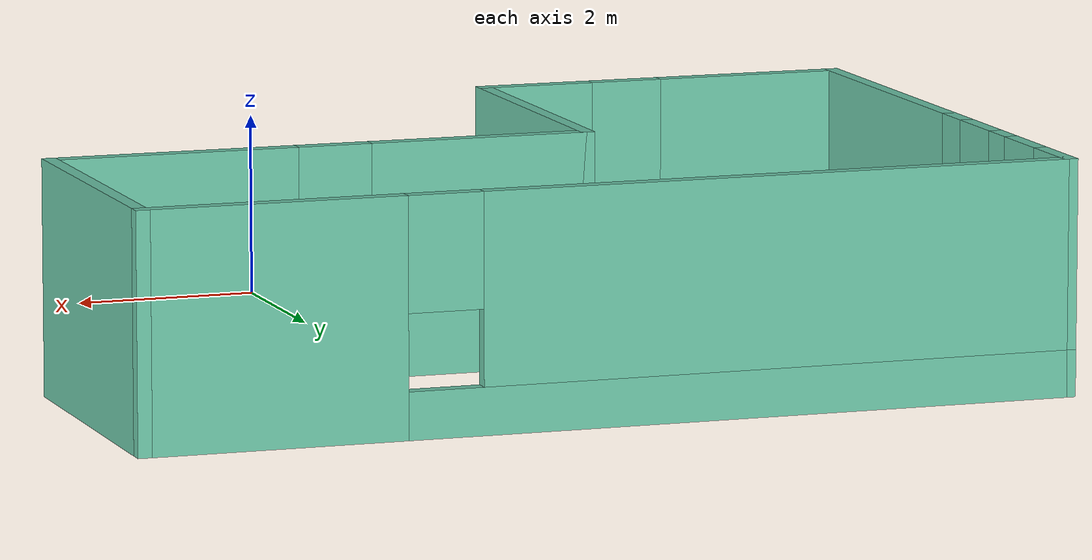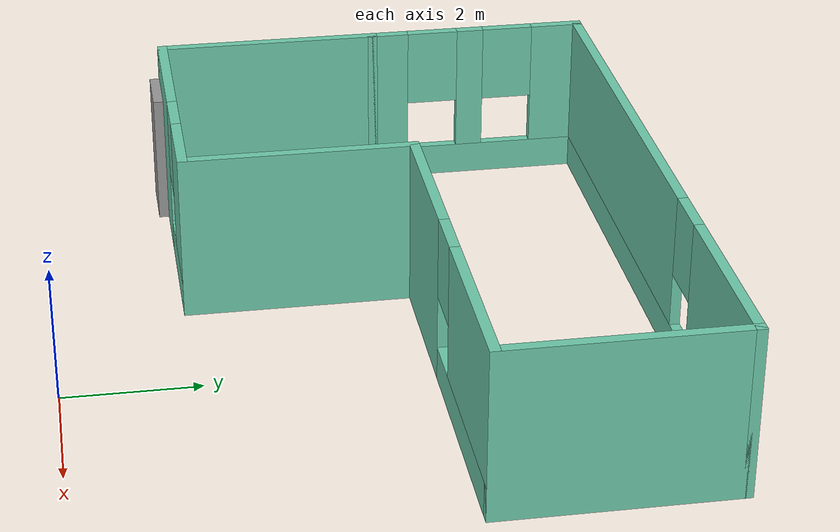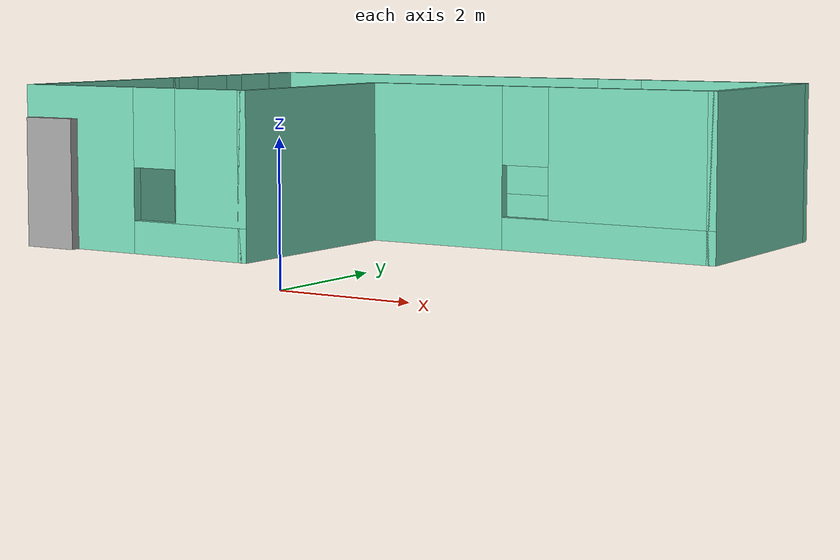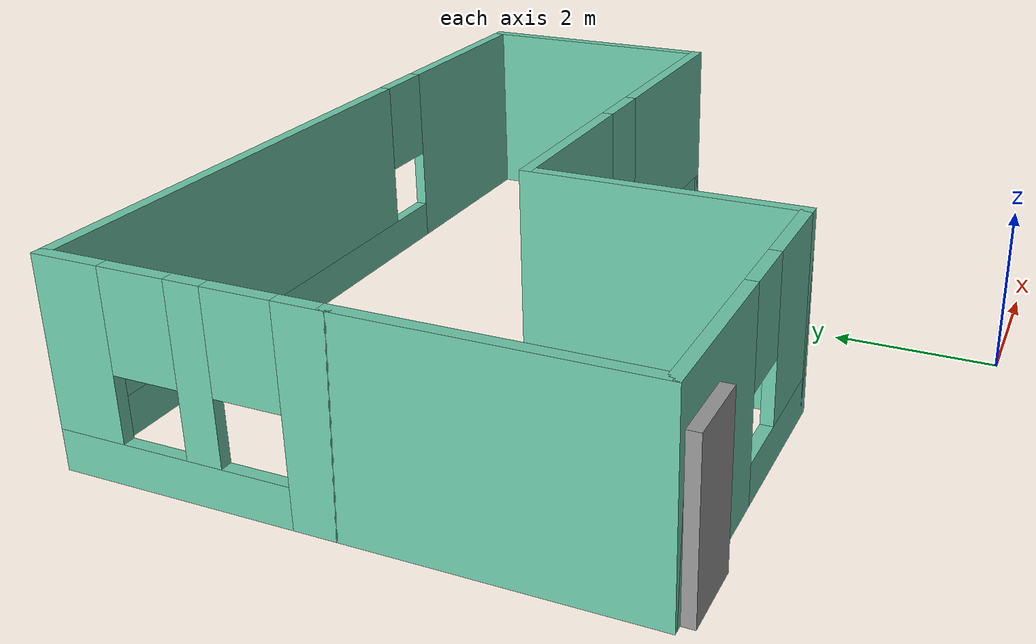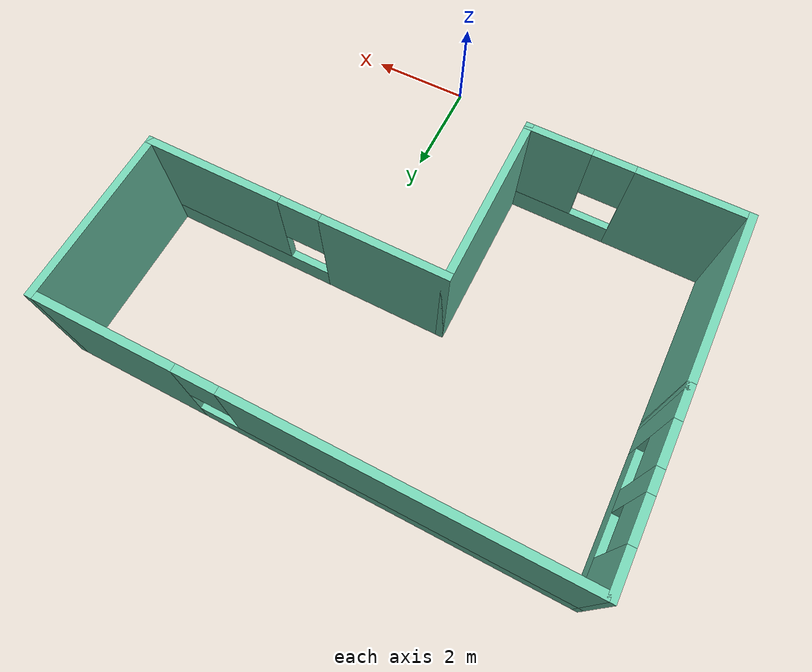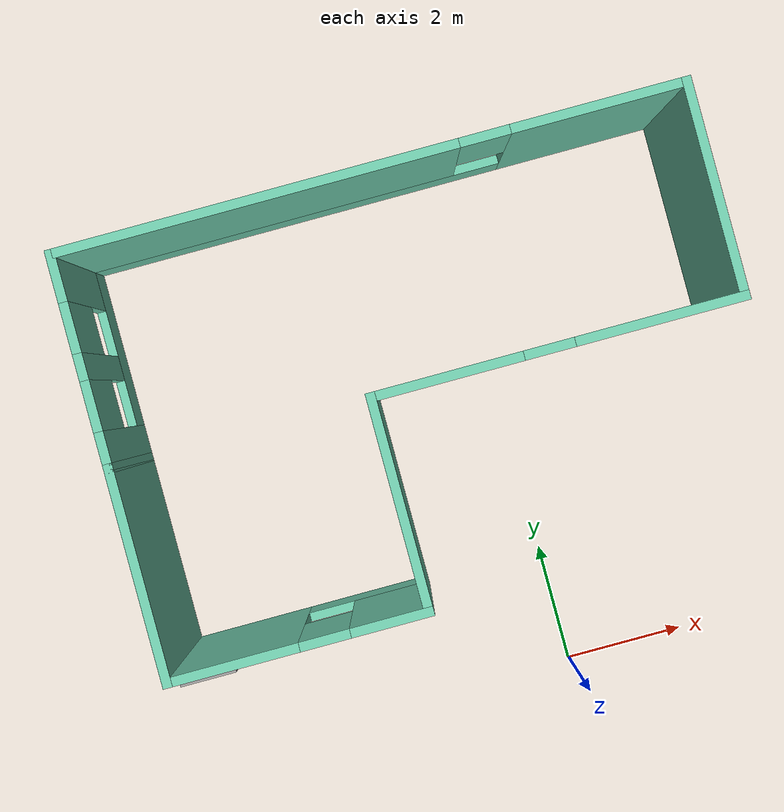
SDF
<?xml version='1.0'?>
<sdf version='1.6'>
  <model name='building'>
    <pose frame=''>-1.20844 5.30416 0 0 -0 0</pose>
    <link name='Door_0'>
      <collision name='Door_0_Collision'>
        <geometry>
          <box>
            <size>0.9 0.17 2</size>
          </box>
        </geometry>
        <pose frame=''>0 0 1 0 -0 0</pose>
      </collision>
      <visual name='Door_0_Visual'>
        <pose frame=''>0 0 1 0 -0 0</pose>
        <geometry>
          <box>
            <size>0.9 0.17 2</size>
          </box>
        </geometry>
        <material>
          <script>
            <uri>file://media/materials/scripts/gazebo.material</uri>
            <name>Gazebo/Grey</name>
          </script>
        </material>
      </visual>
      <pose frame=''>-4.47288 -3.49085 0 0 -0 0</pose>
    </link>
    <link name='Wall_1'>
      <collision name='Wall_1_Collision'>
        <geometry>
          <box>
            <size>3.5 0.15 2.5</size>
          </box>
        </geometry>
        <pose frame=''>0 0 1.25 0 -0 0</pose>
      </collision>
      <visual name='Wall_1_Visual'>
        <pose frame=''>0 0 1.25 0 -0 0</pose>
        <geometry>
          <box>
            <size>3.5 0.15 2.5</size>
          </box>
        </geometry>
        <material>
          <script>
            <uri>file://media/materials/scripts/gazebo.material</uri>
            <name>Gazebo/Grey</name>
          </script>
          <ambient>0.435294 0.796078 0.67451 1</ambient>
        </material>
        <meta>
          <layer>0</layer>
        </meta>
      </visual>
      <pose frame=''>-4.975 -1.675 0 0 0 -1.5708</pose>
    </link>
    <link name='Wall_2'>
      <pose frame=''>-2.925 -3.35 0 0 -0 0</pose>
      <visual name='Wall_2_Visual_0'>
        <pose frame=''>-1.05189 0 1.25 0 -0 0</pose>
        <geometry>
          <box>
            <size>2.14622 0.15 2.5</size>
          </box>
        </geometry>
        <material>
          <script>
            <uri>file://media/materials/scripts/gazebo.material</uri>
            <name>Gazebo/Grey</name>
          </script>
          <ambient>0.435294 0.796078 0.67451 1</ambient>
        </material>
        <meta>
          <layer>0</layer>
        </meta>
      </visual>
      <collision name='Wall_2_Collision_0'>
        <geometry>
          <box>
            <size>2.14622 0.15 2.5</size>
          </box>
        </geometry>
        <pose frame=''>-1.05189 0 1.25 0 -0 0</pose>
      </collision>
      <visual name='Wall_2_Visual_1'>
        <pose frame=''>1.07311 0 0.25 0 -0 0</pose>
        <geometry>
          <box>
            <size>2.10378 0.15 0.5</size>
          </box>
        </geometry>
        <material>
          <script>
            <uri>file://media/materials/scripts/gazebo.material</uri>
            <name>Gazebo/Grey</name>
          </script>
          <ambient>0.435294 0.796078 0.67451 1</ambient>
        </material>
        <meta>
          <layer>0</layer>
        </meta>
      </visual>
      <collision name='Wall_2_Collision_1'>
        <geometry>
          <box>
            <size>2.10378 0.15 0.5</size>
          </box>
        </geometry>
        <pose frame=''>1.07311 0 0.25 0 -0 0</pose>
      </collision>
      <visual name='Wall_2_Visual_2'>
        <pose frame=''>1.47311 0 1.5 0 -0 0</pose>
        <geometry>
          <box>
            <size>1.30378 0.15 2</size>
          </box>
        </geometry>
        <material>
          <script>
            <uri>file://media/materials/scripts/gazebo.material</uri>
            <name>Gazebo/Grey</name>
          </script>
          <ambient>0.435294 0.796078 0.67451 1</ambient>
        </material>
        <meta>
          <layer>0</layer>
        </meta>
      </visual>
      <collision name='Wall_2_Collision_2'>
        <geometry>
          <box>
            <size>1.30378 0.15 2</size>
          </box>
        </geometry>
        <pose frame=''>1.47311 0 1.5 0 -0 0</pose>
      </collision>
      <visual name='Wall_2_Visual_3'>
        <pose frame=''>0.421219 0 1.9 0 -0 0</pose>
        <geometry>
          <box>
            <size>0.8 0.15 1.2</size>
          </box>
        </geometry>
        <material>
          <script>
            <uri>file://media/materials/scripts/gazebo.material</uri>
            <name>Gazebo/Grey</name>
          </script>
          <ambient>0.435294 0.796078 0.67451 1</ambient>
        </material>
        <meta>
          <layer>0</layer>
        </meta>
      </visual>
      <collision name='Wall_2_Collision_3'>
        <geometry>
          <box>
            <size>0.8 0.15 1.2</size>
          </box>
        </geometry>
        <pose frame=''>0.421219 0 1.9 0 -0 0</pose>
      </collision>
    </link>
    <link name='Wall_3'>
      <collision name='Wall_3_Collision'>
        <geometry>
          <box>
            <size>3.5 0.15 2.5</size>
          </box>
        </geometry>
        <pose frame=''>0 0 1.25 0 -0 0</pose>
      </collision>
      <visual name='Wall_3_Visual'>
        <pose frame=''>0 0 1.25 0 -0 0</pose>
        <geometry>
          <box>
            <size>3.5 0.15 2.5</size>
          </box>
        </geometry>
        <material>
          <script>
            <uri>file://media/materials/scripts/gazebo.material</uri>
            <name>Gazebo/Grey</name>
          </script>
          <ambient>0.435294 0.796078 0.67451 1</ambient>
        </material>
        <meta>
          <layer>0</layer>
        </meta>
      </visual>
      <pose frame=''>-0.875 -1.675 0 0 -0 1.5708</pose>
    </link>
    <link name='Wall_4'>
      <pose frame=''>2.05 0 0 0 -0 0</pose>
      <visual name='Wall_4_Visual_0'>
        <pose frame=''>-1.7644 0 1.25 0 -0 0</pose>
        <geometry>
          <box>
            <size>2.4712 0.15 2.5</size>
          </box>
        </geometry>
        <material>
          <script>
            <uri>file://media/materials/scripts/gazebo.material</uri>
            <name>Gazebo/Grey</name>
          </script>
          <ambient>0.435294 0.796078 0.67451 1</ambient>
        </material>
        <meta>
          <layer>0</layer>
        </meta>
      </visual>
      <collision name='Wall_4_Collision_0'>
        <geometry>
          <box>
            <size>2.4712 0.15 2.5</size>
          </box>
        </geometry>
        <pose frame=''>-1.7644 0 1.25 0 -0 0</pose>
      </collision>
      <visual name='Wall_4_Visual_1'>
        <pose frame=''>1.2356 0 0.25 0 -0 0</pose>
        <geometry>
          <box>
            <size>3.5288 0.15 0.5</size>
          </box>
        </geometry>
        <material>
          <script>
            <uri>file://media/materials/scripts/gazebo.material</uri>
            <name>Gazebo/Grey</name>
          </script>
          <ambient>0.435294 0.796078 0.67451 1</ambient>
        </material>
        <meta>
          <layer>0</layer>
        </meta>
      </visual>
      <collision name='Wall_4_Collision_1'>
        <geometry>
          <box>
            <size>3.5288 0.15 0.5</size>
          </box>
        </geometry>
        <pose frame=''>1.2356 0 0.25 0 -0 0</pose>
      </collision>
      <visual name='Wall_4_Visual_2'>
        <pose frame=''>1.6356 0 1.5 0 -0 0</pose>
        <geometry>
          <box>
            <size>2.72879 0.15 2</size>
          </box>
        </geometry>
        <material>
          <script>
            <uri>file://media/materials/scripts/gazebo.material</uri>
            <name>Gazebo/Grey</name>
          </script>
          <ambient>0.435294 0.796078 0.67451 1</ambient>
        </material>
        <meta>
          <layer>0</layer>
        </meta>
      </visual>
      <collision name='Wall_4_Collision_2'>
        <geometry>
          <box>
            <size>2.72879 0.15 2</size>
          </box>
        </geometry>
        <pose frame=''>1.6356 0 1.5 0 -0 0</pose>
      </collision>
      <visual name='Wall_4_Visual_3'>
        <pose frame=''>-0.128795 0 1.9 0 -0 0</pose>
        <geometry>
          <box>
            <size>0.8 0.15 1.2</size>
          </box>
        </geometry>
        <material>
          <script>
            <uri>file://media/materials/scripts/gazebo.material</uri>
            <name>Gazebo/Grey</name>
          </script>
          <ambient>0.435294 0.796078 0.67451 1</ambient>
        </material>
        <meta>
          <layer>0</layer>
        </meta>
      </visual>
      <collision name='Wall_4_Collision_3'>
        <geometry>
          <box>
            <size>0.8 0.15 1.2</size>
          </box>
        </geometry>
        <pose frame=''>-0.128795 0 1.9 0 -0 0</pose>
      </collision>
    </link>
    <link name='Wall_5'>
      <collision name='Wall_5_Collision'>
        <geometry>
          <box>
            <size>3.5 0.15 2.5</size>
          </box>
        </geometry>
        <pose frame=''>0 0 1.25 0 -0 0</pose>
      </collision>
      <visual name='Wall_5_Visual'>
        <pose frame=''>0 0 1.25 0 -0 0</pose>
        <geometry>
          <box>
            <size>3.5 0.15 2.5</size>
          </box>
        </geometry>
        <material>
          <script>
            <uri>file://media/materials/scripts/gazebo.material</uri>
            <name>Gazebo/Grey</name>
          </script>
          <ambient>0.435294 0.796078 0.67451 1</ambient>
        </material>
        <meta>
          <layer>0</layer>
        </meta>
      </visual>
      <pose frame=''>4.975 1.675 0 0 -0 1.5708</pose>
    </link>
    <link name='Wall_6'>
      <pose frame=''>0.05 3.35 0 0 -0 3.14159</pose>
      <visual name='Wall_6_Visual_0'>
        <pose frame=''>-3.58313 0 1.25 0 -0 0</pose>
        <geometry>
          <box>
            <size>2.83373 0.15 2.5</size>
          </box>
        </geometry>
        <material>
          <script>
            <uri>file://media/materials/scripts/gazebo.material</uri>
            <name>Gazebo/Grey</name>
          </script>
          <ambient>0.435294 0.796078 0.67451 1</ambient>
        </material>
        <meta>
          <layer>0</layer>
        </meta>
      </visual>
      <collision name='Wall_6_Collision_0'>
        <geometry>
          <box>
            <size>2.83373 0.15 2.5</size>
          </box>
        </geometry>
        <pose frame=''>-3.58313 0 1.25 0 -0 0</pose>
      </collision>
      <visual name='Wall_6_Visual_1'>
        <pose frame=''>1.41687 0 0.25 0 -0 0</pose>
        <geometry>
          <box>
            <size>7.16627 0.15 0.5</size>
          </box>
        </geometry>
        <material>
          <script>
            <uri>file://media/materials/scripts/gazebo.material</uri>
            <name>Gazebo/Grey</name>
          </script>
          <ambient>0.435294 0.796078 0.67451 1</ambient>
        </material>
        <meta>
          <layer>0</layer>
        </meta>
      </visual>
      <collision name='Wall_6_Collision_1'>
        <geometry>
          <box>
            <size>7.16627 0.15 0.5</size>
          </box>
        </geometry>
        <pose frame=''>1.41687 0 0.25 0 -0 0</pose>
      </collision>
      <visual name='Wall_6_Visual_2'>
        <pose frame=''>1.81687 0 1.5 0 -0 0</pose>
        <geometry>
          <box>
            <size>6.36627 0.15 2</size>
          </box>
        </geometry>
        <material>
          <script>
            <uri>file://media/materials/scripts/gazebo.material</uri>
            <name>Gazebo/Grey</name>
          </script>
          <ambient>0.435294 0.796078 0.67451 1</ambient>
        </material>
        <meta>
          <layer>0</layer>
        </meta>
      </visual>
      <collision name='Wall_6_Collision_2'>
        <geometry>
          <box>
            <size>6.36627 0.15 2</size>
          </box>
        </geometry>
        <pose frame=''>1.81687 0 1.5 0 -0 0</pose>
      </collision>
      <visual name='Wall_6_Visual_3'>
        <pose frame=''>-1.76626 0 1.9 0 -0 0</pose>
        <geometry>
          <box>
            <size>0.8 0.15 1.2</size>
          </box>
        </geometry>
        <material>
          <script>
            <uri>file://media/materials/scripts/gazebo.material</uri>
            <name>Gazebo/Grey</name>
          </script>
          <ambient>0.435294 0.796078 0.67451 1</ambient>
        </material>
        <meta>
          <layer>0</layer>
        </meta>
      </visual>
      <collision name='Wall_6_Collision_3'>
        <geometry>
          <box>
            <size>0.8 0.15 1.2</size>
          </box>
        </geometry>
        <pose frame=''>-1.76626 0 1.9 0 -0 0</pose>
      </collision>
    </link>
    <link name='Wall_8'>
      <pose frame=''>-4.975 1.675 0 0 -0 1.5708</pose>
      <visual name='Wall_8_Visual_0'>
        <pose frame=''>-1.42523 0 1.25 0 -0 0</pose>
        <geometry>
          <box>
            <size>0.649536 0.15 2.5</size>
          </box>
        </geometry>
        <material>
          <script>
            <uri>file://media/materials/scripts/gazebo.material</uri>
            <name>Gazebo/Grey</name>
          </script>
          <ambient>0.435294 0.796078 0.67451 1</ambient>
        </material>
        <meta>
          <layer>0</layer>
        </meta>
      </visual>
      <collision name='Wall_8_Collision_0'>
        <geometry>
          <box>
            <size>0.649536 0.15 2.5</size>
          </box>
        </geometry>
        <pose frame=''>-1.42523 0 1.25 0 -0 0</pose>
      </collision>
      <visual name='Wall_8_Visual_1'>
        <pose frame=''>0.324768 0 0.25 0 -0 0</pose>
        <geometry>
          <box>
            <size>2.85046 0.15 0.5</size>
          </box>
        </geometry>
        <material>
          <script>
            <uri>file://media/materials/scripts/gazebo.material</uri>
            <name>Gazebo/Grey</name>
          </script>
          <ambient>0.435294 0.796078 0.67451 1</ambient>
        </material>
        <meta>
          <layer>0</layer>
        </meta>
      </visual>
      <collision name='Wall_8_Collision_1'>
        <geometry>
          <box>
            <size>2.85046 0.15 0.5</size>
          </box>
        </geometry>
        <pose frame=''>0.324768 0 0.25 0 -0 0</pose>
      </collision>
      <visual name='Wall_8_Visual_2'>
        <pose frame=''>-0.088312 0 1.5 0 -0 0</pose>
        <geometry>
          <box>
            <size>0.424304 0.15 2</size>
          </box>
        </geometry>
        <material>
          <script>
            <uri>file://media/materials/scripts/gazebo.material</uri>
            <name>Gazebo/Grey</name>
          </script>
          <ambient>0.435294 0.796078 0.67451 1</ambient>
        </material>
        <meta>
          <layer>0</layer>
        </meta>
      </visual>
      <collision name='Wall_8_Collision_2'>
        <geometry>
          <box>
            <size>0.424304 0.15 2</size>
          </box>
        </geometry>
        <pose frame=''>-0.088312 0 1.5 0 -0 0</pose>
      </collision>
      <visual name='Wall_8_Visual_3'>
        <pose frame=''>1.33692 0 1.5 0 -0 0</pose>
        <geometry>
          <box>
            <size>0.82616 0.15 2</size>
          </box>
        </geometry>
        <material>
          <script>
            <uri>file://media/materials/scripts/gazebo.material</uri>
            <name>Gazebo/Grey</name>
          </script>
          <ambient>0.435294 0.796078 0.67451 1</ambient>
        </material>
        <meta>
          <layer>0</layer>
        </meta>
      </visual>
      <collision name='Wall_8_Collision_3'>
        <geometry>
          <box>
            <size>0.82616 0.15 2</size>
          </box>
        </geometry>
        <pose frame=''>1.33692 0 1.5 0 -0 0</pose>
      </collision>
      <visual name='Wall_8_Visual_4'>
        <pose frame=''>-0.700464 0 1.9 0 -0 0</pose>
        <geometry>
          <box>
            <size>0.8 0.15 1.2</size>
          </box>
        </geometry>
        <material>
          <script>
            <uri>file://media/materials/scripts/gazebo.material</uri>
            <name>Gazebo/Grey</name>
          </script>
          <ambient>0.435294 0.796078 0.67451 1</ambient>
        </material>
        <meta>
          <layer>0</layer>
        </meta>
      </visual>
      <collision name='Wall_8_Collision_4'>
        <geometry>
          <box>
            <size>0.8 0.15 1.2</size>
          </box>
        </geometry>
        <pose frame=''>-0.700464 0 1.9 0 -0 0</pose>
      </collision>
      <visual name='Wall_8_Visual_5'>
        <pose frame=''>0.52384 0 1.9 0 -0 0</pose>
        <geometry>
          <box>
            <size>0.8 0.15 1.2</size>
          </box>
        </geometry>
        <material>
          <script>
            <uri>file://media/materials/scripts/gazebo.material</uri>
            <name>Gazebo/Grey</name>
          </script>
          <ambient>0.435294 0.796078 0.67451 1</ambient>
        </material>
        <meta>
          <layer>0</layer>
        </meta>
      </visual>
      <collision name='Wall_8_Collision_5'>
        <geometry>
          <box>
            <size>0.8 0.15 1.2</size>
          </box>
        </geometry>
        <pose frame=''>0.52384 0 1.9 0 -0 0</pose>
      </collision>
    </link>
    <static>1</static>
  </model>
</sdf>
